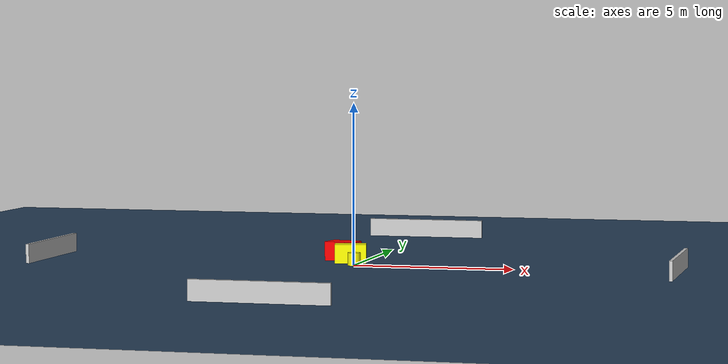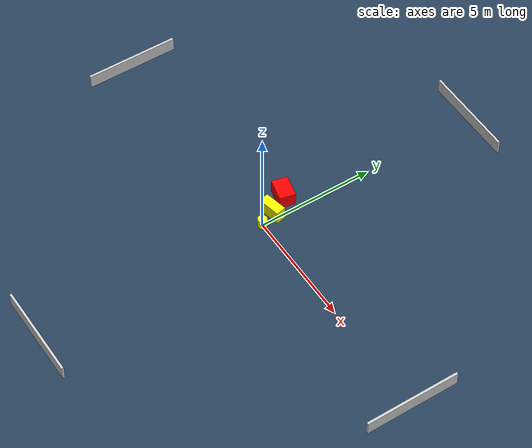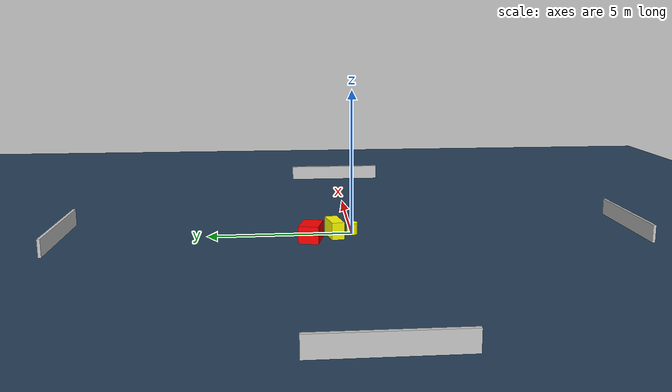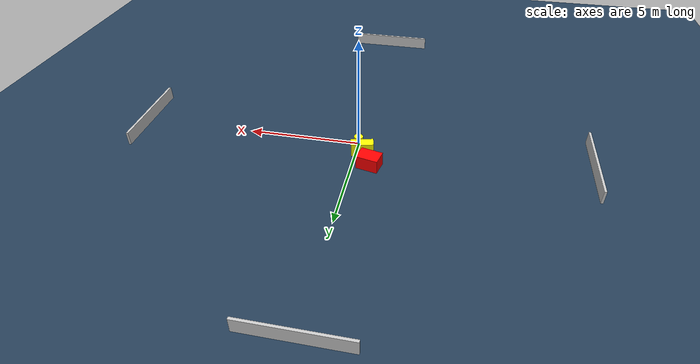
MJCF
<?xml version="1.0" ?>
<mujoco model="generated_environment">
  <option timestep="0.01" integrator="RK4" cone="elliptic"/>
  <default>
    <geom density="1"/>
  </default>
  <asset>
    <texture builtin="gradient" height="3072" name="skybox" rgb1="0.3 0.5 0.7" rgb2="0 0 0" type="skybox" width="512"/>
    <texture builtin="checker" height="300" name="groundplane" rgb1="0.2 0.3 0.4" rgb2="0.1 0.2 0.3" type="2d" width="300"/>
    <material name="groundplane" reflectance="0.2" texrepeat="5 5" texture="groundplane"/>
  </asset>
  <worldbody>
    <light dir="0 0 -1" directional="true" pos="0 0 1.5"/>
    <geom condim="3" friction="0.5 0.005 0.001" material="groundplane" name="floor" pos="0 0 0" size="0 0 0.05" type="plane"/>
    <body name="walls">
      <geom name="wall_1" condim="4" pos="-10.0 0.0 0.3" rgba="0.800000011920929 0.800000011920929 0.800000011920929 1.0" size="0.05 2.0 0.3" type="box"/>
      <geom name="wall_2" condim="4" pos="10.0 0.0 0.3" rgba="0.800000011920929 0.800000011920929 0.800000011920929 1.0" size="0.05 2.0 0.3" type="box"/>
      <geom name="wall_3" condim="4" pos="0.0 -10.0 0.3" rgba="0.800000011920929 0.800000011920929 0.800000011920929 1.0" size="2.0 0.05 0.3" type="box"/>
      <geom name="wall_4" condim="4" pos="0.0 10.0 0.3" rgba="0.800000011920929 0.800000011920929 0.800000011920929 1.0" size="2.0 0.05 0.3" type="box"/>
    </body>
    <body name="robot">
      <joint name="joint_x" type="slide" pos="0 0 0" axis="1 0 0"/>
      <joint name="joint_y" type="slide" pos="0 0 0" axis="0 1 0"/>
      <geom name="robot" type="cylinder" pos="0.0 0.0 0.2" size="0.2 0.2 0.0" mass="5.0" friction="1.0 0.005 0.0001" condim="4" rgba="1.0 1.0 0.0 1.0"/>
    </body>
    <body name="obstacle_1_movable">
      <geom name="obstacle_1_movable" condim="4" pos="-0.279641945001148 0.6388200962762521 0.3" euler="0 0 282.1062683527251" friction="0.0 0.005 0.001" rgba="1.0 1.0 0.0 1.0" size="0.21685377695268904 0.487149423158481 0.3" type="box" mass="0.1"/>
      <joint type="free"/>
    </body>
    <body name="obstacle_2_static">
      <geom name="obstacle_2_static" condim="4" pos="-0.7344396062858679 1.4614303445307046 0.3" euler="0 0 167.45091712386298" friction="0.0 0.005 0.001" rgba="1.0 0.0 0.0 1.0" size="0.47817106263216214 0.3409489514044777 0.3" type="box"/>
    </body>
  </worldbody>
  <actuator>
    <motor name="actuator_x" joint="joint_x" gear="1" ctrlrange="-1 1"/>
    <motor name="actuator_y" joint="joint_y" gear="1" ctrlrange="-1 1"/>
  </actuator>
</mujoco>
